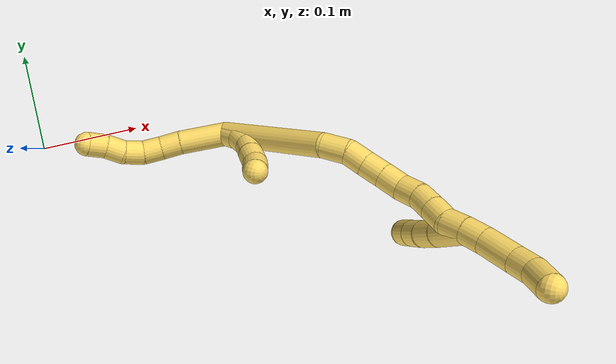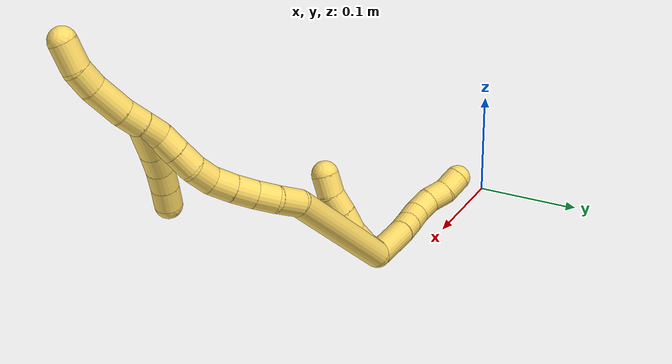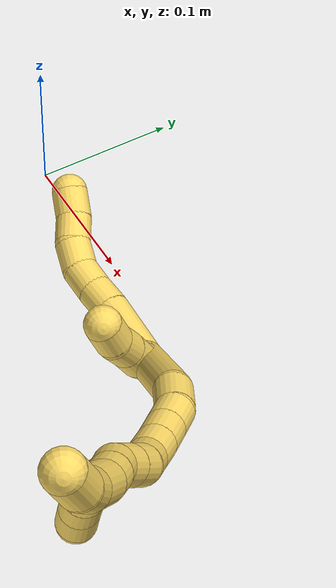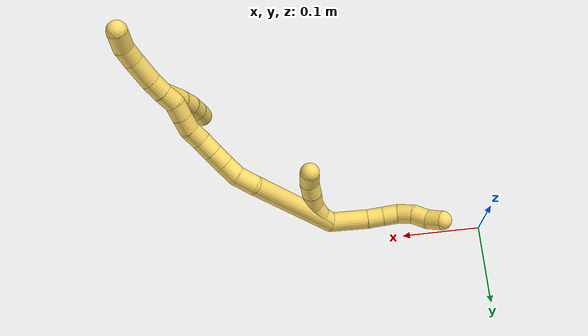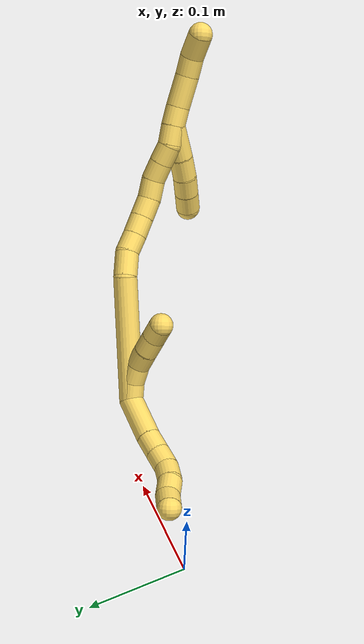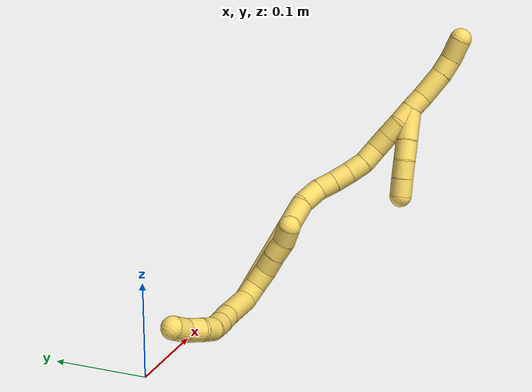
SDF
<sdf version="1.7">
 <world name="default">
  <model name="5">
   <static>0</static>
   <link name="5">
    <collision name="collision-cylinder-e_1_2_8">
     <pose>-0.016027 -0.00378 -0.017729 2.93156 -0.723982 -2.59863</pose>
     <geometry><cylinder><radius>0.0125</radius><length>0.048394</length></cylinder></geometry>
     <surface>
      <friction><ode><mu>1.16</mu><mu2>1.16</mu2><slip1>0</slip1><slip2>0</slip2></ode></friction>
      <contact><ode><kp>1e+06</kp><kd>1</kd><max_vel>0</max_vel><min_depth>0.001</min_depth></ode></contact>
     </surface>
    </collision>
    <visual name="visual-cylinder-e_1_2_8">
     <pose>-0.016027 -0.00378 -0.017729 2.93156 -0.723982 -2.59863</pose>
     <geometry><cylinder><radius>0.0125</radius><length>0.048394</length></cylinder></geometry>
     <material><ambient>1 0.858824 0.4 1</ambient></material>
    </visual>
    <collision name="collision-cylinder-e_2_8_9">
     <pose>-0.038972 -0.010036 -0.042679 2.81111 -0.73622 -2.32539</pose>
     <geometry><cylinder><radius>0.0125</radius><length>0.020602</length></cylinder></geometry>
     <surface>
      <friction><ode><mu>1.16</mu><mu2>1.16</mu2><slip1>0</slip1><slip2>0</slip2></ode></friction>
      <contact><ode><kp>1e+06</kp><kd>1</kd><max_vel>0</max_vel><min_depth>0.001</min_depth></ode></contact>
     </surface>
    </collision>
    <visual name="visual-cylinder-e_2_8_9">
     <pose>-0.038972 -0.010036 -0.042679 2.81111 -0.73622 -2.32539</pose>
     <geometry><cylinder><radius>0.0125</radius><length>0.020602</length></cylinder></geometry>
     <material><ambient>1 0.858824 0.4 1</ambient></material>
    </visual>
    <collision name="collision-cylinder-e_3_9_10">
     <pose>-0.053334 -0.014407 -0.056485 2.86163 -0.826758 -2.51998</pose>
     <geometry><cylinder><radius>0.0125</radius><length>0.020238</length></cylinder></geometry>
     <surface>
      <friction><ode><mu>1.16</mu><mu2>1.16</mu2><slip1>0</slip1><slip2>0</slip2></ode></friction>
      <contact><ode><kp>1e+06</kp><kd>1</kd><max_vel>0</max_vel><min_depth>0.001</min_depth></ode></contact>
     </surface>
    </collision>
    <visual name="visual-cylinder-e_3_9_10">
     <pose>-0.053334 -0.014407 -0.056485 2.86163 -0.826758 -2.51998</pose>
     <geometry><cylinder><radius>0.0125</radius><length>0.020238</length></cylinder></geometry>
     <material><ambient>1 0.858824 0.4 1</ambient></material>
    </visual>
    <collision name="collision-cylinder-e_4_10_11">
     <pose>-0.069132 -0.014878 -0.068899 -2.90211 -0.948022 2.68086</pose>
     <geometry><cylinder><radius>0.0125</radius><length>0.020566</length></cylinder></geometry>
     <surface>
      <friction><ode><mu>1.16</mu><mu2>1.16</mu2><slip1>0</slip1><slip2>0</slip2></ode></friction>
      <contact><ode><kp>1e+06</kp><kd>1</kd><max_vel>0</max_vel><min_depth>0.001</min_depth></ode></contact>
     </surface>
    </collision>
    <visual name="visual-cylinder-e_4_10_11">
     <pose>-0.069132 -0.014878 -0.068899 -2.90211 -0.948022 2.68086</pose>
     <geometry><cylinder><radius>0.0125</radius><length>0.020566</length></cylinder></geometry>
     <material><ambient>1 0.858824 0.4 1</ambient></material>
    </visual>
    <collision name="collision-cylinder-e_5_11_12">
     <pose>-0.08422 -0.009477 -0.081087 -2.58276 -0.731607 1.8558</pose>
     <geometry><cylinder><radius>0.0125</radius><length>0.020165</length></cylinder></geometry>
     <surface>
      <friction><ode><mu>1.16</mu><mu2>1.16</mu2><slip1>0</slip1><slip2>0</slip2></ode></friction>
      <contact><ode><kp>1e+06</kp><kd>1</kd><max_vel>0</max_vel><min_depth>0.001</min_depth></ode></contact>
     </surface>
    </collision>
    <visual name="visual-cylinder-e_5_11_12">
     <pose>-0.08422 -0.009477 -0.081087 -2.58276 -0.731607 1.8558</pose>
     <geometry><cylinder><radius>0.0125</radius><length>0.020165</length></cylinder></geometry>
     <material><ambient>1 0.858824 0.4 1</ambient></material>
    </visual>
    <collision name="collision-cylinder-e_6_12_6">
     <pose>-0.09949 -0.002854 -0.091978 -2.61296 -1.01962 2.23994</pose>
     <geometry><cylinder><radius>0.0125</radius><length>0.020034</length></cylinder></geometry>
     <surface>
      <friction><ode><mu>1.16</mu><mu2>1.16</mu2><slip1>0</slip1><slip2>0</slip2></ode></friction>
      <contact><ode><kp>1e+06</kp><kd>1</kd><max_vel>0</max_vel><min_depth>0.001</min_depth></ode></contact>
     </surface>
    </collision>
    <visual name="visual-cylinder-e_6_12_6">
     <pose>-0.09949 -0.002854 -0.091978 -2.61296 -1.01962 2.23994</pose>
     <geometry><cylinder><radius>0.0125</radius><length>0.020034</length></cylinder></geometry>
     <material><ambient>1 0.858824 0.4 1</ambient></material>
    </visual>
    <collision name="collision-cylinder-e_1_2_13">
     <pose>-0.001474 3.9e-05 0.009891 -0.003909 -0.147987 0.00029</pose>
     <geometry><cylinder><radius>0.0125</radius><length>0.02</length></cylinder></geometry>
     <surface>
      <friction><ode><mu>1.16</mu><mu2>1.16</mu2><slip1>0</slip1><slip2>0</slip2></ode></friction>
      <contact><ode><kp>1e+06</kp><kd>1</kd><max_vel>0</max_vel><min_depth>0.001</min_depth></ode></contact>
     </surface>
    </collision>
    <visual name="visual-cylinder-e_1_2_13">
     <pose>-0.001474 3.9e-05 0.009891 -0.003909 -0.147987 0.00029</pose>
     <geometry><cylinder><radius>0.0125</radius><length>0.02</length></cylinder></geometry>
     <material><ambient>1 0.858824 0.4 1</ambient></material>
    </visual>
    <collision name="collision-cylinder-e_2_13_14">
     <pose>-0.006926 -0.001107 0.02888 0.129434 -0.408994 -0.02688</pose>
     <geometry><cylinder><radius>0.0125</radius><length>0.02</length></cylinder></geometry>
     <surface>
      <friction><ode><mu>1.16</mu><mu2>1.16</mu2><slip1>0</slip1><slip2>0</slip2></ode></friction>
      <contact><ode><kp>1e+06</kp><kd>1</kd><max_vel>0</max_vel><min_depth>0.001</min_depth></ode></contact>
     </surface>
    </collision>
    <visual name="visual-cylinder-e_2_13_14">
     <pose>-0.006926 -0.001107 0.02888 0.129434 -0.408994 -0.02688</pose>
     <geometry><cylinder><radius>0.0125</radius><length>0.02</length></cylinder></geometry>
     <material><ambient>1 0.858824 0.4 1</ambient></material>
    </visual>
    <collision name="collision-cylinder-e_3_14_15">
     <pose>-0.017513 -0.003733 0.045342 0.193337 -0.722151 -0.073206</pose>
     <geometry><cylinder><radius>0.0125</radius><length>0.02</length></cylinder></geometry>
     <surface>
      <friction><ode><mu>1.16</mu><mu2>1.16</mu2><slip1>0</slip1><slip2>0</slip2></ode></friction>
      <contact><ode><kp>1e+06</kp><kd>1</kd><max_vel>0</max_vel><min_depth>0.001</min_depth></ode></contact>
     </surface>
    </collision>
    <visual name="visual-cylinder-e_3_14_15">
     <pose>-0.017513 -0.003733 0.045342 0.193337 -0.722151 -0.073206</pose>
     <geometry><cylinder><radius>0.0125</radius><length>0.02</length></cylinder></geometry>
     <material><ambient>1 0.858824 0.4 1</ambient></material>
    </visual>
    <collision name="collision-cylinder-e_4_15_16">
     <pose>-0.030257 -0.007115 0.060362 0.248256 -0.660349 -0.08547</pose>
     <geometry><cylinder><radius>0.0125</radius><length>0.02</length></cylinder></geometry>
     <surface>
      <friction><ode><mu>1.16</mu><mu2>1.16</mu2><slip1>0</slip1><slip2>0</slip2></ode></friction>
      <contact><ode><kp>1e+06</kp><kd>1</kd><max_vel>0</max_vel><min_depth>0.001</min_depth></ode></contact>
     </surface>
    </collision>
    <visual name="visual-cylinder-e_4_15_16">
     <pose>-0.030257 -0.007115 0.060362 0.248256 -0.660349 -0.08547</pose>
     <geometry><cylinder><radius>0.0125</radius><length>0.02</length></cylinder></geometry>
     <material><ambient>1 0.858824 0.4 1</ambient></material>
    </visual>
    <collision name="collision-cylinder-e_5_16_5">
     <pose>-0.04419 -0.009466 0.074263 0.065541 -0.894585 -0.03145</pose>
     <geometry><cylinder><radius>0.0125</radius><length>0.02</length></cylinder></geometry>
     <surface>
      <friction><ode><mu>1.16</mu><mu2>1.16</mu2><slip1>0</slip1><slip2>0</slip2></ode></friction>
      <contact><ode><kp>1e+06</kp><kd>1</kd><max_vel>0</max_vel><min_depth>0.001</min_depth></ode></contact>
     </surface>
    </collision>
    <visual name="visual-cylinder-e_5_16_5">
     <pose>-0.04419 -0.009466 0.074263 0.065541 -0.894585 -0.03145</pose>
     <geometry><cylinder><radius>0.0125</radius><length>0.02</length></cylinder></geometry>
     <material><ambient>1 0.858824 0.4 1</ambient></material>
    </visual>
    <collision name="collision-cylinder-e_1_2_17">
     <pose>-0.003923 0.006748 0.064739 -0.103866 -0.06019 0.00313</pose>
     <geometry><cylinder><radius>0.0125</radius><length>0.130416</length></cylinder></geometry>
     <surface>
      <friction><ode><mu>1.16</mu><mu2>1.16</mu2><slip1>0</slip1><slip2>0</slip2></ode></friction>
      <contact><ode><kp>1e+06</kp><kd>1</kd><max_vel>0</max_vel><min_depth>0.001</min_depth></ode></contact>
     </surface>
    </collision>
    <visual name="visual-cylinder-e_1_2_17">
     <pose>-0.003923 0.006748 0.064739 -0.103866 -0.06019 0.00313</pose>
     <geometry><cylinder><radius>0.0125</radius><length>0.130416</length></cylinder></geometry>
     <material><ambient>1 0.858824 0.4 1</ambient></material>
    </visual>
    <collision name="collision-cylinder-e_2_17_18">
     <pose>-0.005513 0.011907 0.142197 0.12436 0.179939 0.011233</pose>
     <geometry><cylinder><radius>0.0125</radius><length>0.026055</length></cylinder></geometry>
     <surface>
      <friction><ode><mu>1.16</mu><mu2>1.16</mu2><slip1>0</slip1><slip2>0</slip2></ode></friction>
      <contact><ode><kp>1e+06</kp><kd>1</kd><max_vel>0</max_vel><min_depth>0.001</min_depth></ode></contact>
     </surface>
    </collision>
    <visual name="visual-cylinder-e_2_17_18">
     <pose>-0.005513 0.011907 0.142197 0.12436 0.179939 0.011233</pose>
     <geometry><cylinder><radius>0.0125</radius><length>0.026055</length></cylinder></geometry>
     <material><ambient>1 0.858824 0.4 1</ambient></material>
    </visual>
    <collision name="collision-cylinder-e_3_18_19">
     <pose>-0.002437 0.006028 0.164083 0.43765 0.073436 0.016338</pose>
     <geometry><cylinder><radius>0.0125</radius><length>0.020297</length></cylinder></geometry>
     <surface>
      <friction><ode><mu>1.16</mu><mu2>1.16</mu2><slip1>0</slip1><slip2>0</slip2></ode></friction>
      <contact><ode><kp>1e+06</kp><kd>1</kd><max_vel>0</max_vel><min_depth>0.001</min_depth></ode></contact>
     </surface>
    </collision>
    <visual name="visual-cylinder-e_3_18_19">
     <pose>-0.002437 0.006028 0.164083 0.43765 0.073436 0.016338</pose>
     <geometry><cylinder><radius>0.0125</radius><length>0.020297</length></cylinder></geometry>
     <material><ambient>1 0.858824 0.4 1</ambient></material>
    </visual>
    <collision name="collision-cylinder-e_4_19_20">
     <pose>-0.001385 -0.002107 0.182783 0.38343 0.029889 0.005802</pose>
     <geometry><cylinder><radius>0.0125</radius><length>0.020568</length></cylinder></geometry>
     <surface>
      <friction><ode><mu>1.16</mu><mu2>1.16</mu2><slip1>0</slip1><slip2>0</slip2></ode></friction>
      <contact><ode><kp>1e+06</kp><kd>1</kd><max_vel>0</max_vel><min_depth>0.001</min_depth></ode></contact>
     </surface>
    </collision>
    <visual name="visual-cylinder-e_4_19_20">
     <pose>-0.001385 -0.002107 0.182783 0.38343 0.029889 0.005802</pose>
     <geometry><cylinder><radius>0.0125</radius><length>0.020568</length></cylinder></geometry>
     <material><ambient>1 0.858824 0.4 1</ambient></material>
    </visual>
    <collision name="collision-cylinder-e_5_20_21">
     <pose>-0.001516 -0.009711 0.202278 0.360685 -0.041122 -0.007498</pose>
     <geometry><cylinder><radius>0.0125</radius><length>0.021314</length></cylinder></geometry>
     <surface>
      <friction><ode><mu>1.16</mu><mu2>1.16</mu2><slip1>0</slip1><slip2>0</slip2></ode></friction>
      <contact><ode><kp>1e+06</kp><kd>1</kd><max_vel>0</max_vel><min_depth>0.001</min_depth></ode></contact>
     </surface>
    </collision>
    <visual name="visual-cylinder-e_5_20_21">
     <pose>-0.001516 -0.009711 0.202278 0.360685 -0.041122 -0.007498</pose>
     <geometry><cylinder><radius>0.0125</radius><length>0.021314</length></cylinder></geometry>
     <material><ambient>1 0.858824 0.4 1</ambient></material>
    </visual>
    <collision name="collision-cylinder-e_6_21_22">
     <pose>-0.00383 -0.014754 0.222363 0.126369 -0.181802 -0.011534</pose>
     <geometry><cylinder><radius>0.0125</radius><length>0.020747</length></cylinder></geometry>
     <surface>
      <friction><ode><mu>1.16</mu><mu2>1.16</mu2><slip1>0</slip1><slip2>0</slip2></ode></friction>
      <contact><ode><kp>1e+06</kp><kd>1</kd><max_vel>0</max_vel><min_depth>0.001</min_depth></ode></contact>
     </surface>
    </collision>
    <visual name="visual-cylinder-e_6_21_22">
     <pose>-0.00383 -0.014754 0.222363 0.126369 -0.181802 -0.011534</pose>
     <geometry><cylinder><radius>0.0125</radius><length>0.020747</length></cylinder></geometry>
     <material><ambient>1 0.858824 0.4 1</ambient></material>
    </visual>
    <collision name="collision-cylinder-e_7_22_23">
     <pose>-0.009946 -0.018503 0.241376 0.270176 -0.430843 -0.059464</pose>
     <geometry><cylinder><radius>0.0125</radius><length>0.02031</length></cylinder></geometry>
     <surface>
      <friction><ode><mu>1.16</mu><mu2>1.16</mu2><slip1>0</slip1><slip2>0</slip2></ode></friction>
      <contact><ode><kp>1e+06</kp><kd>1</kd><max_vel>0</max_vel><min_depth>0.001</min_depth></ode></contact>
     </surface>
    </collision>
    <visual name="visual-cylinder-e_7_22_23">
     <pose>-0.009946 -0.018503 0.241376 0.270176 -0.430843 -0.059464</pose>
     <geometry><cylinder><radius>0.0125</radius><length>0.02031</length></cylinder></geometry>
     <material><ambient>1 0.858824 0.4 1</ambient></material>
    </visual>
    <collision name="collision-cylinder-e_8_23_24">
     <pose>-0.018505 -0.023607 0.258945 0.295475 -0.444262 -0.0672</pose>
     <geometry><cylinder><radius>0.0125</radius><length>0.020089</length></cylinder></geometry>
     <surface>
      <friction><ode><mu>1.16</mu><mu2>1.16</mu2><slip1>0</slip1><slip2>0</slip2></ode></friction>
      <contact><ode><kp>1e+06</kp><kd>1</kd><max_vel>0</max_vel><min_depth>0.001</min_depth></ode></contact>
     </surface>
    </collision>
    <visual name="visual-cylinder-e_8_23_24">
     <pose>-0.018505 -0.023607 0.258945 0.295475 -0.444262 -0.0672</pose>
     <geometry><cylinder><radius>0.0125</radius><length>0.020089</length></cylinder></geometry>
     <material><ambient>1 0.858824 0.4 1</ambient></material>
    </visual>
    <collision name="collision-cylinder-e_9_24_1">
     <pose>-0.024304 -0.027309 0.277557 0.106457 -0.147273 -0.007861</pose>
     <geometry><cylinder><radius>0.0125</radius><length>0.020203</length></cylinder></geometry>
     <surface>
      <friction><ode><mu>1.16</mu><mu2>1.16</mu2><slip1>0</slip1><slip2>0</slip2></ode></friction>
      <contact><ode><kp>1e+06</kp><kd>1</kd><max_vel>0</max_vel><min_depth>0.001</min_depth></ode></contact>
     </surface>
    </collision>
    <visual name="visual-cylinder-e_9_24_1">
     <pose>-0.024304 -0.027309 0.277557 0.106457 -0.147273 -0.007861</pose>
     <geometry><cylinder><radius>0.0125</radius><length>0.020203</length></cylinder></geometry>
     <material><ambient>1 0.858824 0.4 1</ambient></material>
    </visual>
    <collision name="collision-cylinder-e_1_1_25">
     <pose>-0.019913 -0.035837 0.27195 2.69379 0.328323 1.25781</pose>
     <geometry><cylinder><radius>0.0125</radius><length>0.036431</length></cylinder></geometry>
     <surface>
      <friction><ode><mu>1.16</mu><mu2>1.16</mu2><slip1>0</slip1><slip2>0</slip2></ode></friction>
      <contact><ode><kp>1e+06</kp><kd>1</kd><max_vel>0</max_vel><min_depth>0.001</min_depth></ode></contact>
     </surface>
    </collision>
    <visual name="visual-cylinder-e_1_1_25">
     <pose>-0.019913 -0.035837 0.27195 2.69379 0.328323 1.25781</pose>
     <geometry><cylinder><radius>0.0125</radius><length>0.036431</length></cylinder></geometry>
     <material><ambient>1 0.858824 0.4 1</ambient></material>
    </visual>
    <collision name="collision-cylinder-e_2_25_26">
     <pose>-0.009588 -0.047722 0.246839 2.70897 0.399527 1.48896</pose>
     <geometry><cylinder><radius>0.0125</radius><length>0.022882</length></cylinder></geometry>
     <surface>
      <friction><ode><mu>1.16</mu><mu2>1.16</mu2><slip1>0</slip1><slip2>0</slip2></ode></friction>
      <contact><ode><kp>1e+06</kp><kd>1</kd><max_vel>0</max_vel><min_depth>0.001</min_depth></ode></contact>
     </surface>
    </collision>
    <visual name="visual-cylinder-e_2_25_26">
     <pose>-0.009588 -0.047722 0.246839 2.70897 0.399527 1.48896</pose>
     <geometry><cylinder><radius>0.0125</radius><length>0.022882</length></cylinder></geometry>
     <material><ambient>1 0.858824 0.4 1</ambient></material>
    </visual>
    <collision name="collision-cylinder-e_3_26_27">
     <pose>9.9e-05 -0.055687 0.229226 2.72638 0.537326 1.83544</pose>
     <geometry><cylinder><radius>0.0125</radius><length>0.020465</length></cylinder></geometry>
     <surface>
      <friction><ode><mu>1.16</mu><mu2>1.16</mu2><slip1>0</slip1><slip2>0</slip2></ode></friction>
      <contact><ode><kp>1e+06</kp><kd>1</kd><max_vel>0</max_vel><min_depth>0.001</min_depth></ode></contact>
     </surface>
    </collision>
    <visual name="visual-cylinder-e_3_26_27">
     <pose>9.9e-05 -0.055687 0.229226 2.72638 0.537326 1.83544</pose>
     <geometry><cylinder><radius>0.0125</radius><length>0.020465</length></cylinder></geometry>
     <material><ambient>1 0.858824 0.4 1</ambient></material>
    </visual>
    <collision name="collision-cylinder-e_4_27_4">
     <pose>0.010968 -0.062815 0.213588 2.70079 0.590752 1.87223</pose>
     <geometry><cylinder><radius>0.0125</radius><length>0.020221</length></cylinder></geometry>
     <surface>
      <friction><ode><mu>1.16</mu><mu2>1.16</mu2><slip1>0</slip1><slip2>0</slip2></ode></friction>
      <contact><ode><kp>1e+06</kp><kd>1</kd><max_vel>0</max_vel><min_depth>0.001</min_depth></ode></contact>
     </surface>
    </collision>
    <visual name="visual-cylinder-e_4_27_4">
     <pose>0.010968 -0.062815 0.213588 2.70079 0.590752 1.87223</pose>
     <geometry><cylinder><radius>0.0125</radius><length>0.020221</length></cylinder></geometry>
     <material><ambient>1 0.858824 0.4 1</ambient></material>
    </visual>
    <collision name="collision-cylinder-e_1_1_28">
     <pose>-0.027533 -0.030047 0.297275 0.169727 -0.174231 -0.014859</pose>
     <geometry><cylinder><radius>0.0125</radius><length>0.020155</length></cylinder></geometry>
     <surface>
      <friction><ode><mu>1.16</mu><mu2>1.16</mu2><slip1>0</slip1><slip2>0</slip2></ode></friction>
      <contact><ode><kp>1e+06</kp><kd>1</kd><max_vel>0</max_vel><min_depth>0.001</min_depth></ode></contact>
     </surface>
    </collision>
    <visual name="visual-cylinder-e_1_1_28">
     <pose>-0.027533 -0.030047 0.297275 0.169727 -0.174231 -0.014859</pose>
     <geometry><cylinder><radius>0.0125</radius><length>0.020155</length></cylinder></geometry>
     <material><ambient>1 0.858824 0.4 1</ambient></material>
    </visual>
    <collision name="collision-cylinder-e_2_28_29">
     <pose>-0.034247 -0.034343 0.322843 0.164442 -0.301 -0.024992</pose>
     <geometry><cylinder><radius>0.0125</radius><length>0.033508</length></cylinder></geometry>
     <surface>
      <friction><ode><mu>1.16</mu><mu2>1.16</mu2><slip1>0</slip1><slip2>0</slip2></ode></friction>
      <contact><ode><kp>1e+06</kp><kd>1</kd><max_vel>0</max_vel><min_depth>0.001</min_depth></ode></contact>
     </surface>
    </collision>
    <visual name="visual-cylinder-e_2_28_29">
     <pose>-0.034247 -0.034343 0.322843 0.164442 -0.301 -0.024992</pose>
     <geometry><cylinder><radius>0.0125</radius><length>0.033508</length></cylinder></geometry>
     <material><ambient>1 0.858824 0.4 1</ambient></material>
    </visual>
    <collision name="collision-cylinder-e_3_29_30">
     <pose>-0.043358 -0.037626 0.348011 0.070552 -0.414935 -0.014857</pose>
     <geometry><cylinder><radius>0.0125</radius><length>0.020557</length></cylinder></geometry>
     <surface>
      <friction><ode><mu>1.16</mu><mu2>1.16</mu2><slip1>0</slip1><slip2>0</slip2></ode></friction>
      <contact><ode><kp>1e+06</kp><kd>1</kd><max_vel>0</max_vel><min_depth>0.001</min_depth></ode></contact>
     </surface>
    </collision>
    <visual name="visual-cylinder-e_3_29_30">
     <pose>-0.043358 -0.037626 0.348011 0.070552 -0.414935 -0.014857</pose>
     <geometry><cylinder><radius>0.0125</radius><length>0.020557</length></cylinder></geometry>
     <material><ambient>1 0.858824 0.4 1</ambient></material>
    </visual>
    <collision name="collision-cylinder-e_4_30_3">
     <pose>-0.055915 -0.038858 0.367142 0.058328 -0.711201 -0.021668</pose>
     <geometry><cylinder><radius>0.0125</radius><length>0.025779</length></cylinder></geometry>
     <surface>
      <friction><ode><mu>1.16</mu><mu2>1.16</mu2><slip1>0</slip1><slip2>0</slip2></ode></friction>
      <contact><ode><kp>1e+06</kp><kd>1</kd><max_vel>0</max_vel><min_depth>0.001</min_depth></ode></contact>
     </surface>
    </collision>
    <visual name="visual-cylinder-e_4_30_3">
     <pose>-0.055915 -0.038858 0.367142 0.058328 -0.711201 -0.021668</pose>
     <geometry><cylinder><radius>0.0125</radius><length>0.025779</length></cylinder></geometry>
     <material><ambient>1 0.858824 0.4 1</ambient></material>
    </visual>
    <collision name="collision-sphere-3">
     <pose>-0.064329 -0.039427 0.37689 0 -0 0</pose>
     <geometry><sphere><radius>0.0125</radius></sphere></geometry>
     <surface>
      <friction><ode><mu>1.16</mu><mu2>1.16</mu2><slip1>0</slip1><slip2>0</slip2></ode></friction>
      <contact><ode><kp>1e+06</kp><kd>1</kd><max_vel>0</max_vel><min_depth>0.001</min_depth></ode></contact>
     </surface>
    </collision>
    <visual name="visual-sphere-3">
     <pose>-0.064329 -0.039427 0.37689 0 -0 0</pose>
     <geometry><sphere><radius>0.0125</radius></sphere></geometry>
     <material><ambient>1 0.858824 0.4 1</ambient></material>
    </visual>
    <collision name="collision-sphere-30">
     <pose>-0.047502 -0.038289 0.357394 0 -0 0</pose>
     <geometry><sphere><radius>0.0125</radius></sphere></geometry>
     <surface>
      <friction><ode><mu>1.16</mu><mu2>1.16</mu2><slip1>0</slip1><slip2>0</slip2></ode></friction>
      <contact><ode><kp>1e+06</kp><kd>1</kd><max_vel>0</max_vel><min_depth>0.001</min_depth></ode></contact>
     </surface>
    </collision>
    <visual name="visual-sphere-30">
     <pose>-0.047502 -0.038289 0.357394 0 -0 0</pose>
     <geometry><sphere><radius>0.0125</radius></sphere></geometry>
     <material><ambient>1 0.858824 0.4 1</ambient></material>
    </visual>
    <collision name="collision-sphere-29">
     <pose>-0.039215 -0.036963 0.338628 0 -0 0</pose>
     <geometry><sphere><radius>0.0125</radius></sphere></geometry>
     <surface>
      <friction><ode><mu>1.16</mu><mu2>1.16</mu2><slip1>0</slip1><slip2>0</slip2></ode></friction>
      <contact><ode><kp>1e+06</kp><kd>1</kd><max_vel>0</max_vel><min_depth>0.001</min_depth></ode></contact>
     </surface>
    </collision>
    <visual name="visual-sphere-29">
     <pose>-0.039215 -0.036963 0.338628 0 -0 0</pose>
     <geometry><sphere><radius>0.0125</radius></sphere></geometry>
     <material><ambient>1 0.858824 0.4 1</ambient></material>
    </visual>
    <collision name="collision-sphere-28">
     <pose>-0.02928 -0.031724 0.307058 0 -0 0</pose>
     <geometry><sphere><radius>0.0125</radius></sphere></geometry>
     <surface>
      <friction><ode><mu>1.16</mu><mu2>1.16</mu2><slip1>0</slip1><slip2>0</slip2></ode></friction>
      <contact><ode><kp>1e+06</kp><kd>1</kd><max_vel>0</max_vel><min_depth>0.001</min_depth></ode></contact>
     </surface>
    </collision>
    <visual name="visual-sphere-28">
     <pose>-0.02928 -0.031724 0.307058 0 -0 0</pose>
     <geometry><sphere><radius>0.0125</radius></sphere></geometry>
     <material><ambient>1 0.858824 0.4 1</ambient></material>
    </visual>
    <collision name="collision-sphere-4">
     <pose>0.0166 -0.066398 0.205993 0 -0 0</pose>
     <geometry><sphere><radius>0.0125</radius></sphere></geometry>
     <surface>
      <friction><ode><mu>1.16</mu><mu2>1.16</mu2><slip1>0</slip1><slip2>0</slip2></ode></friction>
      <contact><ode><kp>1e+06</kp><kd>1</kd><max_vel>0</max_vel><min_depth>0.001</min_depth></ode></contact>
     </surface>
    </collision>
    <visual name="visual-sphere-4">
     <pose>0.0166 -0.066398 0.205993 0 -0 0</pose>
     <geometry><sphere><radius>0.0125</radius></sphere></geometry>
     <material><ambient>1 0.858824 0.4 1</ambient></material>
    </visual>
    <collision name="collision-sphere-27">
     <pose>0.005337 -0.059233 0.221182 0 -0 0</pose>
     <geometry><sphere><radius>0.0125</radius></sphere></geometry>
     <surface>
      <friction><ode><mu>1.16</mu><mu2>1.16</mu2><slip1>0</slip1><slip2>0</slip2></ode></friction>
      <contact><ode><kp>1e+06</kp><kd>1</kd><max_vel>0</max_vel><min_depth>0.001</min_depth></ode></contact>
     </surface>
    </collision>
    <visual name="visual-sphere-27">
     <pose>0.005337 -0.059233 0.221182 0 -0 0</pose>
     <geometry><sphere><radius>0.0125</radius></sphere></geometry>
     <material><ambient>1 0.858824 0.4 1</ambient></material>
    </visual>
    <collision name="collision-sphere-26">
     <pose>-0.005138 -0.052141 0.23727 0 -0 0</pose>
     <geometry><sphere><radius>0.0125</radius></sphere></geometry>
     <surface>
      <friction><ode><mu>1.16</mu><mu2>1.16</mu2><slip1>0</slip1><slip2>0</slip2></ode></friction>
      <contact><ode><kp>1e+06</kp><kd>1</kd><max_vel>0</max_vel><min_depth>0.001</min_depth></ode></contact>
     </surface>
    </collision>
    <visual name="visual-sphere-26">
     <pose>-0.005138 -0.052141 0.23727 0 -0 0</pose>
     <geometry><sphere><radius>0.0125</radius></sphere></geometry>
     <material><ambient>1 0.858824 0.4 1</ambient></material>
    </visual>
    <collision name="collision-sphere-25">
     <pose>-0.014039 -0.043303 0.256408 0 -0 0</pose>
     <geometry><sphere><radius>0.0125</radius></sphere></geometry>
     <surface>
      <friction><ode><mu>1.16</mu><mu2>1.16</mu2><slip1>0</slip1><slip2>0</slip2></ode></friction>
      <contact><ode><kp>1e+06</kp><kd>1</kd><max_vel>0</max_vel><min_depth>0.001</min_depth></ode></contact>
     </surface>
    </collision>
    <visual name="visual-sphere-25">
     <pose>-0.014039 -0.043303 0.256408 0 -0 0</pose>
     <geometry><sphere><radius>0.0125</radius></sphere></geometry>
     <material><ambient>1 0.858824 0.4 1</ambient></material>
    </visual>
    <collision name="collision-sphere-1">
     <pose>-0.025786 -0.028371 0.287493 0 -0 0</pose>
     <geometry><sphere><radius>0.0125</radius></sphere></geometry>
     <surface>
      <friction><ode><mu>1.16</mu><mu2>1.16</mu2><slip1>0</slip1><slip2>0</slip2></ode></friction>
      <contact><ode><kp>1e+06</kp><kd>1</kd><max_vel>0</max_vel><min_depth>0.001</min_depth></ode></contact>
     </surface>
    </collision>
    <visual name="visual-sphere-1">
     <pose>-0.025786 -0.028371 0.287493 0 -0 0</pose>
     <geometry><sphere><radius>0.0125</radius></sphere></geometry>
     <material><ambient>1 0.858824 0.4 1</ambient></material>
    </visual>
    <collision name="collision-sphere-24">
     <pose>-0.022822 -0.026248 0.267621 0 -0 0</pose>
     <geometry><sphere><radius>0.0125</radius></sphere></geometry>
     <surface>
      <friction><ode><mu>1.16</mu><mu2>1.16</mu2><slip1>0</slip1><slip2>0</slip2></ode></friction>
      <contact><ode><kp>1e+06</kp><kd>1</kd><max_vel>0</max_vel><min_depth>0.001</min_depth></ode></contact>
     </surface>
    </collision>
    <visual name="visual-sphere-24">
     <pose>-0.022822 -0.026248 0.267621 0 -0 0</pose>
     <geometry><sphere><radius>0.0125</radius></sphere></geometry>
     <material><ambient>1 0.858824 0.4 1</ambient></material>
    </visual>
    <collision name="collision-sphere-23">
     <pose>-0.014188 -0.020966 0.250268 0 -0 0</pose>
     <geometry><sphere><radius>0.0125</radius></sphere></geometry>
     <surface>
      <friction><ode><mu>1.16</mu><mu2>1.16</mu2><slip1>0</slip1><slip2>0</slip2></ode></friction>
      <contact><ode><kp>1e+06</kp><kd>1</kd><max_vel>0</max_vel><min_depth>0.001</min_depth></ode></contact>
     </surface>
    </collision>
    <visual name="visual-sphere-23">
     <pose>-0.014188 -0.020966 0.250268 0 -0 0</pose>
     <geometry><sphere><radius>0.0125</radius></sphere></geometry>
     <material><ambient>1 0.858824 0.4 1</ambient></material>
    </visual>
    <collision name="collision-sphere-22">
     <pose>-0.005705 -0.01604 0.232484 0 -0 0</pose>
     <geometry><sphere><radius>0.0125</radius></sphere></geometry>
     <surface>
      <friction><ode><mu>1.16</mu><mu2>1.16</mu2><slip1>0</slip1><slip2>0</slip2></ode></friction>
      <contact><ode><kp>1e+06</kp><kd>1</kd><max_vel>0</max_vel><min_depth>0.001</min_depth></ode></contact>
     </surface>
    </collision>
    <visual name="visual-sphere-22">
     <pose>-0.005705 -0.01604 0.232484 0 -0 0</pose>
     <geometry><sphere><radius>0.0125</radius></sphere></geometry>
     <material><ambient>1 0.858824 0.4 1</ambient></material>
    </visual>
    <collision name="collision-sphere-21">
     <pose>-0.001954 -0.013468 0.212241 0 -0 0</pose>
     <geometry><sphere><radius>0.0125</radius></sphere></geometry>
     <surface>
      <friction><ode><mu>1.16</mu><mu2>1.16</mu2><slip1>0</slip1><slip2>0</slip2></ode></friction>
      <contact><ode><kp>1e+06</kp><kd>1</kd><max_vel>0</max_vel><min_depth>0.001</min_depth></ode></contact>
     </surface>
    </collision>
    <visual name="visual-sphere-21">
     <pose>-0.001954 -0.013468 0.212241 0 -0 0</pose>
     <geometry><sphere><radius>0.0125</radius></sphere></geometry>
     <material><ambient>1 0.858824 0.4 1</ambient></material>
    </visual>
    <collision name="collision-sphere-12">
     <pose>-0.090956 -0.005499 -0.087448 0 -0 0</pose>
     <geometry><sphere><radius>0.0125</radius></sphere></geometry>
     <surface>
      <friction><ode><mu>1.16</mu><mu2>1.16</mu2><slip1>0</slip1><slip2>0</slip2></ode></friction>
      <contact><ode><kp>1e+06</kp><kd>1</kd><max_vel>0</max_vel><min_depth>0.001</min_depth></ode></contact>
     </surface>
    </collision>
    <visual name="visual-sphere-12">
     <pose>-0.090956 -0.005499 -0.087448 0 -0 0</pose>
     <geometry><sphere><radius>0.0125</radius></sphere></geometry>
     <material><ambient>1 0.858824 0.4 1</ambient></material>
    </visual>
    <collision name="collision-sphere-11">
     <pose>-0.077484 -0.013455 -0.074726 0 -0 0</pose>
     <geometry><sphere><radius>0.0125</radius></sphere></geometry>
     <surface>
      <friction><ode><mu>1.16</mu><mu2>1.16</mu2><slip1>0</slip1><slip2>0</slip2></ode></friction>
      <contact><ode><kp>1e+06</kp><kd>1</kd><max_vel>0</max_vel><min_depth>0.001</min_depth></ode></contact>
     </surface>
    </collision>
    <visual name="visual-sphere-11">
     <pose>-0.077484 -0.013455 -0.074726 0 -0 0</pose>
     <geometry><sphere><radius>0.0125</radius></sphere></geometry>
     <material><ambient>1 0.858824 0.4 1</ambient></material>
    </visual>
    <collision name="collision-sphere-10">
     <pose>-0.060779 -0.016301 -0.063072 0 -0 0</pose>
     <geometry><sphere><radius>0.0125</radius></sphere></geometry>
     <surface>
      <friction><ode><mu>1.16</mu><mu2>1.16</mu2><slip1>0</slip1><slip2>0</slip2></ode></friction>
      <contact><ode><kp>1e+06</kp><kd>1</kd><max_vel>0</max_vel><min_depth>0.001</min_depth></ode></contact>
     </surface>
    </collision>
    <visual name="visual-sphere-10">
     <pose>-0.060779 -0.016301 -0.063072 0 -0 0</pose>
     <geometry><sphere><radius>0.0125</radius></sphere></geometry>
     <material><ambient>1 0.858824 0.4 1</ambient></material>
    </visual>
    <collision name="collision-sphere-9">
     <pose>-0.045889 -0.012513 -0.049899 0 -0 0</pose>
     <geometry><sphere><radius>0.0125</radius></sphere></geometry>
     <surface>
      <friction><ode><mu>1.16</mu><mu2>1.16</mu2><slip1>0</slip1><slip2>0</slip2></ode></friction>
      <contact><ode><kp>1e+06</kp><kd>1</kd><max_vel>0</max_vel><min_depth>0.001</min_depth></ode></contact>
     </surface>
    </collision>
    <visual name="visual-sphere-9">
     <pose>-0.045889 -0.012513 -0.049899 0 -0 0</pose>
     <geometry><sphere><radius>0.0125</radius></sphere></geometry>
     <material><ambient>1 0.858824 0.4 1</ambient></material>
    </visual>
    <collision name="collision-sphere-2">
     <geometry><sphere><radius>0.0125</radius></sphere></geometry>
     <surface>
      <friction><ode><mu>1.16</mu><mu2>1.16</mu2><slip1>0</slip1><slip2>0</slip2></ode></friction>
      <contact><ode><kp>1e+06</kp><kd>1</kd><max_vel>0</max_vel><min_depth>0.001</min_depth></ode></contact>
     </surface>
    </collision>
    <visual name="visual-sphere-2">
     <geometry><sphere><radius>0.0125</radius></sphere></geometry>
     <material><ambient>1 0.858824 0.4 1</ambient></material>
    </visual>
    <collision name="collision-sphere-19">
     <pose>-0.001693 0.001738 0.17325 0 -0 0</pose>
     <geometry><sphere><radius>0.0125</radius></sphere></geometry>
     <surface>
      <friction><ode><mu>1.16</mu><mu2>1.16</mu2><slip1>0</slip1><slip2>0</slip2></ode></friction>
      <contact><ode><kp>1e+06</kp><kd>1</kd><max_vel>0</max_vel><min_depth>0.001</min_depth></ode></contact>
     </surface>
    </collision>
    <visual name="visual-sphere-19">
     <pose>-0.001693 0.001738 0.17325 0 -0 0</pose>
     <geometry><sphere><radius>0.0125</radius></sphere></geometry>
     <material><ambient>1 0.858824 0.4 1</ambient></material>
    </visual>
    <collision name="collision-sphere-8">
     <pose>-0.032055 -0.007559 -0.035458 0 -0 0</pose>
     <geometry><sphere><radius>0.0125</radius></sphere></geometry>
     <surface>
      <friction><ode><mu>1.16</mu><mu2>1.16</mu2><slip1>0</slip1><slip2>0</slip2></ode></friction>
      <contact><ode><kp>1e+06</kp><kd>1</kd><max_vel>0</max_vel><min_depth>0.001</min_depth></ode></contact>
     </surface>
    </collision>
    <visual name="visual-sphere-8">
     <pose>-0.032055 -0.007559 -0.035458 0 -0 0</pose>
     <geometry><sphere><radius>0.0125</radius></sphere></geometry>
     <material><ambient>1 0.858824 0.4 1</ambient></material>
    </visual>
    <collision name="collision-sphere-6">
     <pose>-0.108023 -0.000208 -0.096508 0 -0 0</pose>
     <geometry><sphere><radius>0.0125</radius></sphere></geometry>
     <surface>
      <friction><ode><mu>1.16</mu><mu2>1.16</mu2><slip1>0</slip1><slip2>0</slip2></ode></friction>
      <contact><ode><kp>1e+06</kp><kd>1</kd><max_vel>0</max_vel><min_depth>0.001</min_depth></ode></contact>
     </surface>
    </collision>
    <visual name="visual-sphere-6">
     <pose>-0.108023 -0.000208 -0.096508 0 -0 0</pose>
     <geometry><sphere><radius>0.0125</radius></sphere></geometry>
     <material><ambient>1 0.858824 0.4 1</ambient></material>
    </visual>
    <collision name="collision-sphere-13">
     <pose>-0.002949 7.7e-05 0.019781 0 -0 0</pose>
     <geometry><sphere><radius>0.0125</radius></sphere></geometry>
     <surface>
      <friction><ode><mu>1.16</mu><mu2>1.16</mu2><slip1>0</slip1><slip2>0</slip2></ode></friction>
      <contact><ode><kp>1e+06</kp><kd>1</kd><max_vel>0</max_vel><min_depth>0.001</min_depth></ode></contact>
     </surface>
    </collision>
    <visual name="visual-sphere-13">
     <pose>-0.002949 7.7e-05 0.019781 0 -0 0</pose>
     <geometry><sphere><radius>0.0125</radius></sphere></geometry>
     <material><ambient>1 0.858824 0.4 1</ambient></material>
    </visual>
    <collision name="collision-sphere-14">
     <pose>-0.010903 -0.002291 0.037978 0 -0 0</pose>
     <geometry><sphere><radius>0.0125</radius></sphere></geometry>
     <surface>
      <friction><ode><mu>1.16</mu><mu2>1.16</mu2><slip1>0</slip1><slip2>0</slip2></ode></friction>
      <contact><ode><kp>1e+06</kp><kd>1</kd><max_vel>0</max_vel><min_depth>0.001</min_depth></ode></contact>
     </surface>
    </collision>
    <visual name="visual-sphere-14">
     <pose>-0.010903 -0.002291 0.037978 0 -0 0</pose>
     <geometry><sphere><radius>0.0125</radius></sphere></geometry>
     <material><ambient>1 0.858824 0.4 1</ambient></material>
    </visual>
    <collision name="collision-sphere-15">
     <pose>-0.024123 -0.005175 0.052706 0 -0 0</pose>
     <geometry><sphere><radius>0.0125</radius></sphere></geometry>
     <surface>
      <friction><ode><mu>1.16</mu><mu2>1.16</mu2><slip1>0</slip1><slip2>0</slip2></ode></friction>
      <contact><ode><kp>1e+06</kp><kd>1</kd><max_vel>0</max_vel><min_depth>0.001</min_depth></ode></contact>
     </surface>
    </collision>
    <visual name="visual-sphere-15">
     <pose>-0.024123 -0.005175 0.052706 0 -0 0</pose>
     <geometry><sphere><radius>0.0125</radius></sphere></geometry>
     <material><ambient>1 0.858824 0.4 1</ambient></material>
    </visual>
    <collision name="collision-sphere-16">
     <pose>-0.036391 -0.009056 0.068018 0 -0 0</pose>
     <geometry><sphere><radius>0.0125</radius></sphere></geometry>
     <surface>
      <friction><ode><mu>1.16</mu><mu2>1.16</mu2><slip1>0</slip1><slip2>0</slip2></ode></friction>
      <contact><ode><kp>1e+06</kp><kd>1</kd><max_vel>0</max_vel><min_depth>0.001</min_depth></ode></contact>
     </surface>
    </collision>
    <visual name="visual-sphere-16">
     <pose>-0.036391 -0.009056 0.068018 0 -0 0</pose>
     <geometry><sphere><radius>0.0125</radius></sphere></geometry>
     <material><ambient>1 0.858824 0.4 1</ambient></material>
    </visual>
    <collision name="collision-sphere-5">
     <pose>-0.05199 -0.009876 0.080508 0 -0 0</pose>
     <geometry><sphere><radius>0.0125</radius></sphere></geometry>
     <surface>
      <friction><ode><mu>1.16</mu><mu2>1.16</mu2><slip1>0</slip1><slip2>0</slip2></ode></friction>
      <contact><ode><kp>1e+06</kp><kd>1</kd><max_vel>0</max_vel><min_depth>0.001</min_depth></ode></contact>
     </surface>
    </collision>
    <visual name="visual-sphere-5">
     <pose>-0.05199 -0.009876 0.080508 0 -0 0</pose>
     <geometry><sphere><radius>0.0125</radius></sphere></geometry>
     <material><ambient>1 0.858824 0.4 1</ambient></material>
    </visual>
    <collision name="collision-sphere-17">
     <pose>-0.007845 0.013497 0.129479 0 -0 0</pose>
     <geometry><sphere><radius>0.0125</radius></sphere></geometry>
     <surface>
      <friction><ode><mu>1.16</mu><mu2>1.16</mu2><slip1>0</slip1><slip2>0</slip2></ode></friction>
      <contact><ode><kp>1e+06</kp><kd>1</kd><max_vel>0</max_vel><min_depth>0.001</min_depth></ode></contact>
     </surface>
    </collision>
    <visual name="visual-sphere-17">
     <pose>-0.007845 0.013497 0.129479 0 -0 0</pose>
     <geometry><sphere><radius>0.0125</radius></sphere></geometry>
     <material><ambient>1 0.858824 0.4 1</ambient></material>
    </visual>
    <collision name="collision-sphere-18">
     <pose>-0.003182 0.010317 0.154915 0 -0 0</pose>
     <geometry><sphere><radius>0.0125</radius></sphere></geometry>
     <surface>
      <friction><ode><mu>1.16</mu><mu2>1.16</mu2><slip1>0</slip1><slip2>0</slip2></ode></friction>
      <contact><ode><kp>1e+06</kp><kd>1</kd><max_vel>0</max_vel><min_depth>0.001</min_depth></ode></contact>
     </surface>
    </collision>
    <visual name="visual-sphere-18">
     <pose>-0.003182 0.010317 0.154915 0 -0 0</pose>
     <geometry><sphere><radius>0.0125</radius></sphere></geometry>
     <material><ambient>1 0.858824 0.4 1</ambient></material>
    </visual>
    <collision name="collision-sphere-20">
     <pose>-0.001078 -0.005953 0.192316 0 -0 0</pose>
     <geometry><sphere><radius>0.0125</radius></sphere></geometry>
     <surface>
      <friction><ode><mu>1.16</mu><mu2>1.16</mu2><slip1>0</slip1><slip2>0</slip2></ode></friction>
      <contact><ode><kp>1e+06</kp><kd>1</kd><max_vel>0</max_vel><min_depth>0.001</min_depth></ode></contact>
     </surface>
    </collision>
    <visual name="visual-sphere-20">
     <pose>-0.001078 -0.005953 0.192316 0 -0 0</pose>
     <geometry><sphere><radius>0.0125</radius></sphere></geometry>
     <material><ambient>1 0.858824 0.4 1</ambient></material>
    </visual>
    <inertial>
     <pose>-0.021926 -0.014197 0.131291 0 -0 0</pose>
     <mass>0.75</mass>
     <inertia>
      <ixx>0.000199</ixx>
      <ixy>0</ixy>
      <ixz>0</ixz>
      <iyy>0.000234</iyy>
      <iyz>0</iyz>
      <izz>4.2e-05</izz>
     </inertia>
    </inertial>
   </link>
   <pose>0.192959 -0.026494 0.011575 0.485281 0.826638 0.1779</pose>
  </model>
 </world>
</sdf>
